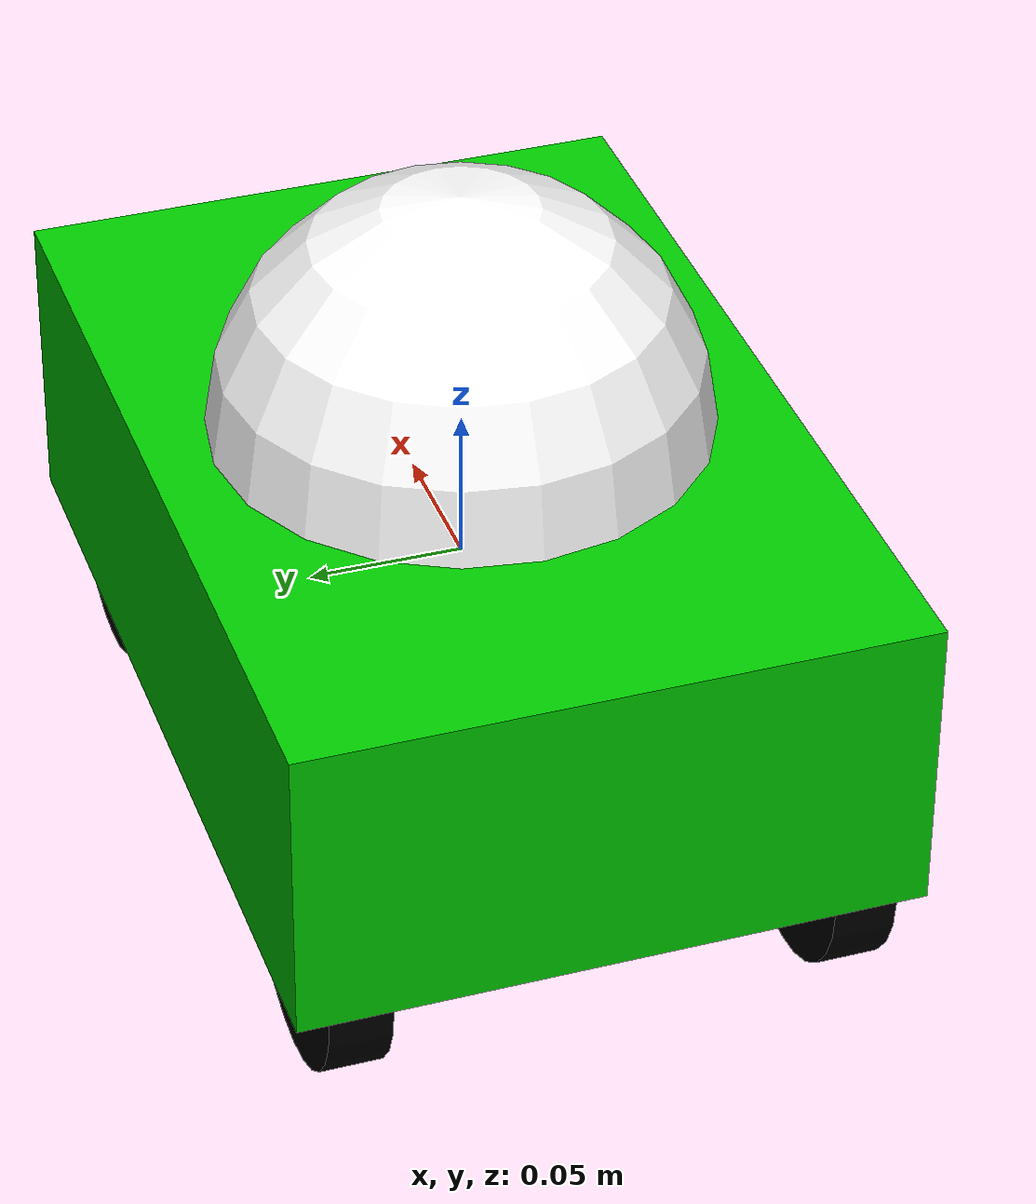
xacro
<?xml version="1.0"?>
<robot name="robot1" xmlns:xacro="http://ros.org/wiki/xacro">

<!--Pre-defining xacro properties-->
  <xacro:property name="length" value="0.3"/>
  <xacro:property name="width" value="0.2"/>
  <xacro:property name="height" value="0.1"/>

 <!--Pre-defining material properties-->
  <material name="green">
    <color rgba="0 0.8 0 1"/>
  </material>

<!--base_link is kind of a psuedo link which not neccessary for the
robot itself but used to avoid an KDL (Kinematic and Dynamics Libraries) error. It can be named anything.-->
  <link name="psuedo1">
    <!--inertial tag is must for simulation env.-->
    <inertial>
        <mass value="3.0"/>
        <inertia ixx="0.01" ixy="0.0" ixz="0.0" iyy="0.0225" iyz="0.0" izz="0.0325"/>
    </inertial>
  </link>
<!--Start of the robot description-->
  <link name="base_link1">
    <visual>
        <geometry>
            <box size="${length} ${width} ${height}"/>
        </geometry>
        <material name="green"/>
    </visual>
<!--collision is an important tag and must be included in those links which are in contact
with the surface. It's a good practice to define collision geometry for every link.-->
    <collision>
        <geometry>
            <box size="${length} ${width} ${height}"/> <!--collision geometry can be of any size-->
        </geometry>
    </collision>
  </link>
<!--Always define the body to psuedo link joint as fixed-->
  <joint name="base_to_world" type="fixed">
    <origin xyz="0.0 0.0 0.0" rpy="0.0 0.0 0.0"/>
    <parent link="base_link1"/>
    <child link="psuedo1"/>
  </joint>

<!--Instead of writing a long URDF file, xacro:include can be used to add other xacro files-->
  <xacro:include filename="$(find first_robot)/xacro/first_robot/wheel.xacro"/>
<!--Using the defined wheel macro to define all four wheels-->
  <xacro:wheel prefix="right" suffix="front" reflect="-1" scope="1"/>
  <xacro:wheel prefix="right" suffix="back" reflect="-1" scope="-1"/>
  <xacro:wheel prefix="left" suffix="front" reflect="1" scope="1"/>
  <xacro:wheel prefix="left" suffix="back" reflect="1" scope="-1"/>

  <xacro:include filename="$(find first_robot)/xacro/first_robot/head.xacro"/>
  <xacro:include filename="$(find first_robot)/xacro/first_robot/gazebo_parameter.xacro"/>

  <gazebo>
    <plugin name="gazebo_ros_control" filename="libgazebo_ros_control.so">
      <robotNameSpace>/robot1</robotNameSpace>
      <robotParam>/robot1/robot_description</robotParam>
    </plugin>
  </gazebo>

</robot>

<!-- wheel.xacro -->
<robot xmlns:xacro="http://www.ros.org/wiki/xacro" name="wheel">

  <xacro:property name="radius" value="0.04"/>
  <xacro:property name="thickness" value="0.02"/>

  <material name="black">
    <color rgba="0 0 0 1"/>
  </material>
<!--xacro:macro is a type of prefined parameter which can be used to avoid
repeatition to reduce the script length-->
  <xacro:macro name="default_wheel_inertial">
    <inertial>
      <mass value="0.2"/>
      <inertia ixx="0.00016" ixy="0.0" ixz="0.0" iyy="0.000087" iyz="0.0" izz="0.000087"/>
    </inertial>
  </xacro:macro>

<!--Pre-defining the wheel macro-->
  <xacro:macro name="wheel" params="prefix suffix reflect scope">
    <link name="${prefix}_${suffix}_wheel">
      <visual>
        <geometry>
            <cylinder radius="${radius}" length="${thickness}"/>
        </geometry>
        <material name="black"/>
        <origin xyz="0 0 0" rpy="${pi/2} 0 0"/>
      </visual>
      <collision>
        <origin xyz="0.0 0.0 0.0" rpy="${pi/2} 0.0 0.0"/>
        <geometry>
          <cylinder radius="${radius}" length="${thickness}"/>
        </geometry>
      </collision>
      <xacro:default_wheel_inertial/>
    </link>

    <joint name="${prefix}_${suffix}_wheel_joint" type="continuous">
      <axis xyz="0.0 1.0 0.0"/>
      <parent link="base_link1"/>
      <child link="${prefix}_${suffix}_wheel"/>
      <origin xyz="${scope*0.11} ${reflect*0.08} -0.05" rpy="0.0 0.0 0.0"/>
    </joint>

<!--gazebo tag is defined for gazebo environment. It is not neccessary for rviz.
gazebo doesn't use the material defined for rviz therefore a different material  is also included.-->
    <gazebo reference="${prefix}_${suffix}_wheel">
      <mu1 value="200.0"/>
      <mu2 value="100.0"/>
      <kp value="10000000.0"/>
      <kd value="1.0"/>
      <material>Gazebo/Black</material>
    </gazebo>

<!--The transmission element is an extension to the URDF robot description model
that is used to describe the relationship between an actuator and a joint. http://wiki.ros.org/urdf/XML/Transmission-->
    <transmission name="${prefix}_${suffix}_wheel_trans">
      <type>transmission_interface/SimpleTransmission</type>
      <joint name="${prefix}_${suffix}_wheel_joint">
        <hardwareInterface>hardware_interface/VelocityJointInterface</hardwareInterface>
      </joint>
      <actuator name="${prefix}_${suffix}_wheel_motor">
        <mechanicalReduction>1.0</mechanicalReduction>
      </actuator>
    </transmission>
  </xacro:macro>
</robot>

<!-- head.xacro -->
<robot xmlns:xacro="http://www.ros.org/wiki/xacro" name="head1">

    <material name="white">
      <color rgba="1 1 1 1"/>
    </material>

    <link name="head1">
        <visual>
            <geometry>
                <sphere radius="0.08"/>
            </geometry>
        <material name="white"/>
        </visual>
        <collision>
            <geometry>
                <sphere radius="0.08"/>
            </geometry>
        </collision>
        <inertial>
            <mass value="1.0"/>
            <inertia ixx="0.001" ixy="0.0" ixz="0.0" iyy="0.001" iyz="0.0" izz="0.001"/>
        </inertial>
    </link>
    <joint name="head_to_base_joint" type="continuous">
        <origin xyz="0.0 0.0 0.05" rpy="0.0 0.0 0.0"/>
        <parent link="base_link1"/>
        <child link="head1"/>
        <axis xyz="0.0 0.0 1.0"/>
    </joint>
    <transmission name="head_trans">
        <type>transmission_interface/SimpleTransmission</type>
        <joint name="head_to_base_joint">
            <hardwareInterface>hardware_interface/PositionJointInterface</hardwareInterface>
        </joint>
        <actuator name="head_motor">
            <mechanicalReduction>1.0</mechanicalReduction>
        </actuator>
    </transmission>
</robot>
